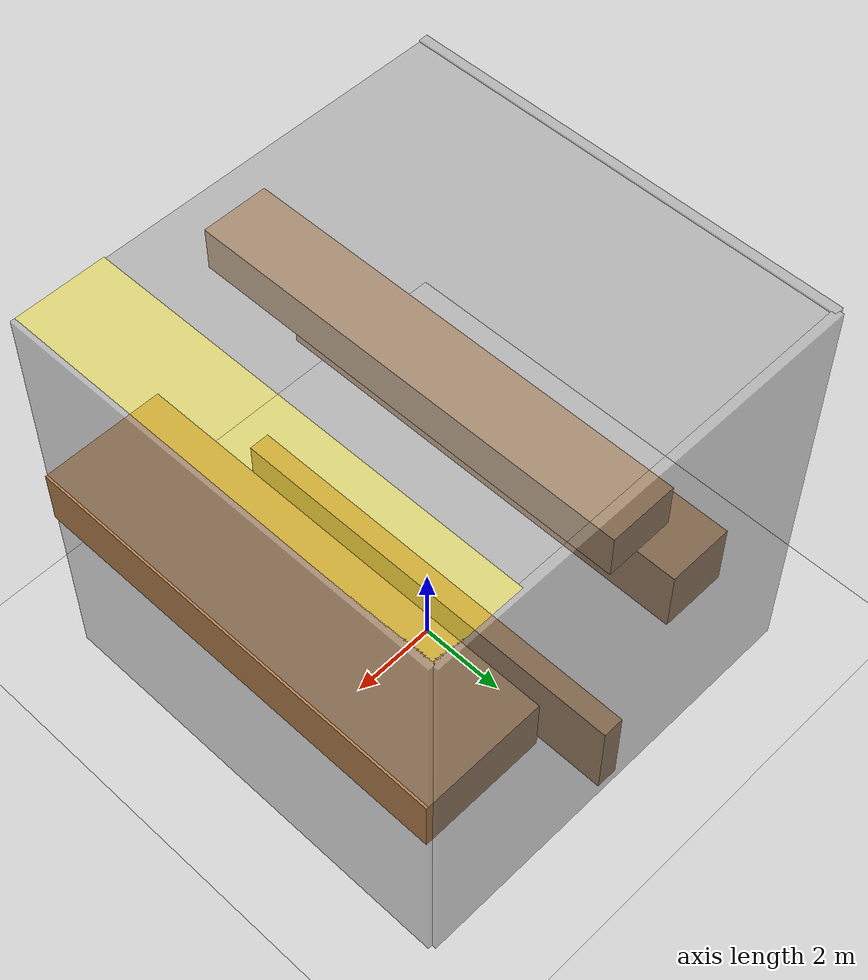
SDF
<sdf version="1.6">
 <world name="default">
  <light name="sun" type="directional">
   <pose>0 0 10 0 -0 0</pose>
   <diffuse>0.8 0.8 0.8 1</diffuse>
   <specular>0.2 0.2 0.2 1</specular>
   <attenuation>
    <range>1000</range>
    <constant>0.9</constant>
    <linear>0.01</linear>
    <quadratic>0.001</quadratic>
   </attenuation>
   <direction>-0.5 0.1 -0.9</direction>
  </light>
  <model name="ground_plane">
   <static>1</static>
   <link name="link">
    <collision name="collision">
     <geometry><plane><normal>0 0 1</normal><size>100 100</size></plane></geometry>
     <surface><friction><ode><mu>100</mu><mu2>50</mu2></ode></friction></surface>
    </collision>
    <visual name="visual">
     <cast_shadows>0</cast_shadows>
     <geometry><plane><normal>0 0 1</normal><size>100 100</size></plane></geometry>
     <material>
      <script><uri>file://media/materials/scripts/gazebo.material</uri><name>Gazebo/Grey</name></script>
     </material>
    </visual>
   </link>
  </model>
  <gravity>0 0 -9.8</gravity>
  <magnetic_field>6e-06 2.3e-05 -4.2e-05</magnetic_field>
  <atmosphere type="adiabatic"/>
  <physics name="default_physics" default="0" type="ode">
   <max_step_size>0.01</max_step_size>
   <real_time_factor>10</real_time_factor>
   <real_time_update_rate>1000</real_time_update_rate>
   <ode><constraints><contact_max_correcting_vel>1.0</contact_max_correcting_vel></constraints></ode>
  </physics>
  <scene><ambient>0.4 0.4 0.4 1</ambient><background>0.7 0.7 0.7 1</background><shadows>1</shadows></scene>
  <spherical_coordinates>
   <surface_model>EARTH_WGS84</surface_model>
   <latitude_deg>0</latitude_deg>
   <longitude_deg>0</longitude_deg>
   <elevation>0</elevation>
   <heading_deg>0</heading_deg>
  </spherical_coordinates>
  <model name="air_space">
   <link name="wall_0">
    <pose>-5 0 5 0 -0 1.5708</pose>
    <collision name="collision"><geometry><box><size>10 0.2 10</size></box></geometry></collision>
    <visual name="visual">
     <cast_shadows>0</cast_shadows>
     <transparency>0.5</transparency>
     <geometry><box><size>10 0.2 10</size></box></geometry>
     <material>
      <script><name>Gazebo/GreyTransparent</name><uri>file://media/materials/scripts/gazebo.material</uri></script>
      <ambient>1 1 1 1</ambient>
     </material>
    </visual>
   </link>
   <link name="wall_1">
    <pose>5 0 5 0 -0 -1.5708</pose>
    <collision name="collision"><geometry><box><size>10 0.2 10</size></box></geometry></collision>
    <visual name="visual">
     <cast_shadows>0</cast_shadows>
     <transparency>0.5</transparency>
     <geometry><box><size>10 0.2 10</size></box></geometry>
     <material>
      <script><name>Gazebo/GreyTransparent</name><uri>file://media/materials/scripts/gazebo.material</uri></script>
      <ambient>1 1 1 1</ambient>
     </material>
    </visual>
   </link>
   <link name="wall_2">
    <pose>0 0 9.85 1.5708 -0 0</pose>
    <collision name="collision"><geometry><box><size>10 0.2 10</size></box></geometry></collision>
    <visual name="visual">
     <cast_shadows>0</cast_shadows>
     <transparency>0.5</transparency>
     <geometry><box><size>10 0.2 10</size></box></geometry>
     <material>
      <script><name>Gazebo/GreyTransparent</name><uri>file://media/materials/scripts/gazebo.material</uri></script>
      <ambient>1 1 1 1</ambient>
     </material>
    </visual>
   </link>
   <link name="wall_3">
    <pose>-0 5 5 0 -0 0</pose>
    <collision name="collision"><geometry><box><size>10 0.2 10</size></box></geometry></collision>
    <visual name="visual">
     <cast_shadows>0</cast_shadows>
     <transparency>0.5</transparency>
     <geometry><box><size>10 0.2 10</size></box></geometry>
     <material>
      <script><uri>file://media/materials/scripts/gazebo.material</uri><name>Gazebo/Grey</name></script>
      <ambient>1 1 1 1</ambient>
     </material>
    </visual>
   </link>
   <link name="cube_1">
    <pose>-2 0 5.0 0 -0 0</pose>
    <collision name="collision"><geometry><box><size>1.5 10 1.5</size></box></geometry></collision>
    <visual name="visual">
     <cast_shadows>0</cast_shadows>
     <geometry><box><size>1.5 10 1.5</size></box></geometry>
     <material>
      <script><uri>file://media/materials/scripts/gazebo.material</uri><name>Gazebo/Wood</name></script>
     </material>
    </visual>
   </link>
   <link name="cube_2">
    <pose>0 0 8.5 0 -0 0</pose>
    <collision name="collision"><geometry><box><size>1.5 10 1.0</size></box></geometry></collision>
    <visual name="visual">
     <cast_shadows>0</cast_shadows>
     <geometry><box><size>1.5 10 1.0</size></box></geometry>
     <material>
      <script><uri>file://media/materials/scripts/gazebo.material</uri><name>Gazebo/Wood</name></script>
     </material>
    </visual>
   </link>
   <link name="cube_3">
    <pose>3.75 0 5 0 -0 0</pose>
    <collision name="collision"><geometry><box><size>2.8 10 1.3</size></box></geometry></collision>
    <visual name="visual">
     <cast_shadows>0</cast_shadows>
     <geometry><box><size>2.8 10 1.3</size></box></geometry>
     <material>
      <script><uri>file://media/materials/scripts/gazebo.material</uri><name>Gazebo/Wood</name></script>
     </material>
    </visual>
   </link>
   <link name="cube_4">
    <pose>0 0 1 0 -0 0</pose>
    <collision name="collision"><geometry><box><size>0.5 10 2</size></box></geometry></collision>
    <visual name="visual">
     <cast_shadows>0</cast_shadows>
     <geometry><box><size>0.5 10 2</size></box></geometry>
     <material>
      <script><uri>file://media/materials/scripts/gazebo.material</uri><name>Gazebo/Wood</name></script>
     </material>
    </visual>
   </link>
   <link name="target">
    <pose>4 0 9 0 -0 0</pose>
    <visual name="visual">
     <transparency>0.5</transparency>
     <geometry><box><size>2 10 2</size></box></geometry>
     <material>
      <script>
       <uri>file://media/materials/scripts/gazebo.material</uri>
       <name>Gazebo/YellowTransparent</name>
      </script>
      <ambient>1 1 1 1</ambient>
     </material>
     <cast_shadows>0</cast_shadows>
    </visual>
   </link>
   <link name="start">
    <pose>3.0 -3.33973 2.0 0 -0 0</pose>
    <visual name="visual">
     <transparency>0.5</transparency>
     <geometry><sphere><radius>0.5</radius></sphere></geometry>
     <material>
      <script><uri>file://media/materials/scripts/gazebo.material</uri><name>Gazebo/GreenTransparent</name></script>
      <ambient>1 1 1 1</ambient>
     </material>
     <cast_shadows>0</cast_shadows>
    </visual>
   </link>
   <static>1</static>
  </model>
 </world>
</sdf>
